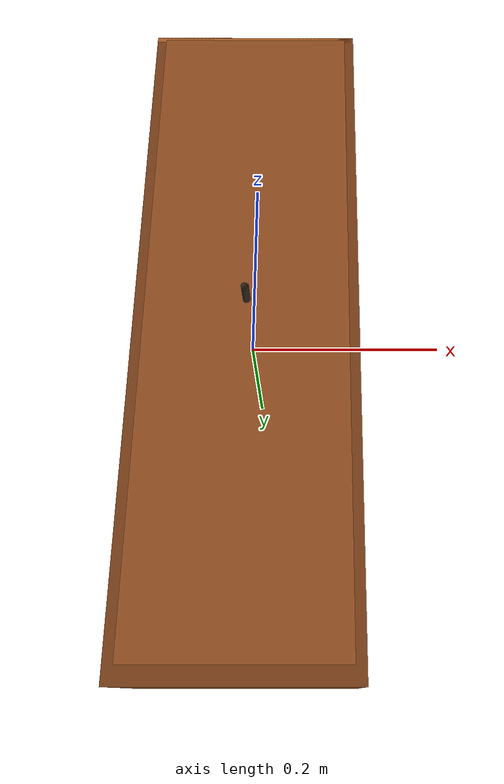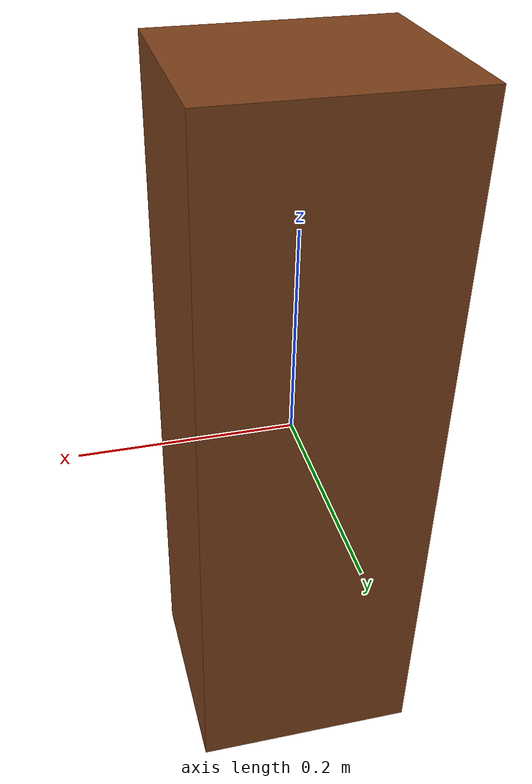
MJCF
<mujoco model="vla82_vla82_016__nightstand">
  <compiler angle="radian"/>
  <asset>
    <texture name="source_texture" type="2d" file="source_texture.png"/>
    <material name="source_material" texture="source_texture" rgba="1 1 1 1"/>
  </asset>
  <default>
    <default class="visual"><geom contype="0" conaffinity="0" group="1"/></default>
    <default class="collision"><geom contype="1" conaffinity="1" group="0" density="300" friction="0.65 0.006 0.0002" solref="0.02 1" solimp="0.9 0.95 0.001"/></default>
    <default class="region"><geom contype="0" conaffinity="0" group="1" rgba="0 1 0 0" mass="0"/></default>
  </default>
  <worldbody><body><body name="object">
    <geom name="nightstand_body" class="visual" mass="0" type="box" size="0.110000 0.100000 0.340000" rgba="0.48 0.25 0.10 1"/>
    <geom name="nightstand_top" class="visual" mass="0" type="box" pos="0 0 0.337000" size="0.110000 0.100000 0.003" rgba="0.68 0.38 0.16 1"/>
    <geom name="nightstand_drawer_front" class="visual" mass="0" type="box" pos="0 -0.101000 0.006" size="0.100000 0.001 0.329000" rgba="0.58 0.31 0.13 1"/>
    <geom name="nightstand_handle" class="visual" mass="0" type="capsule" pos="0 -0.104000 0.011" size="0.004 0.025" quat="0.7071068 0.7071068 0 0" rgba="0.18 0.12 0.08 1"/>
    <geom name="collision" class="collision" type="box" size="0.110000 0.100000 0.340000"/>
    <geom name="reg_bbox" class="region" type="box" pos="0 0 0" size="0.110000 0.100000 0.340000"/>
  </body></body></worldbody>
  <actuator/>
</mujoco>
